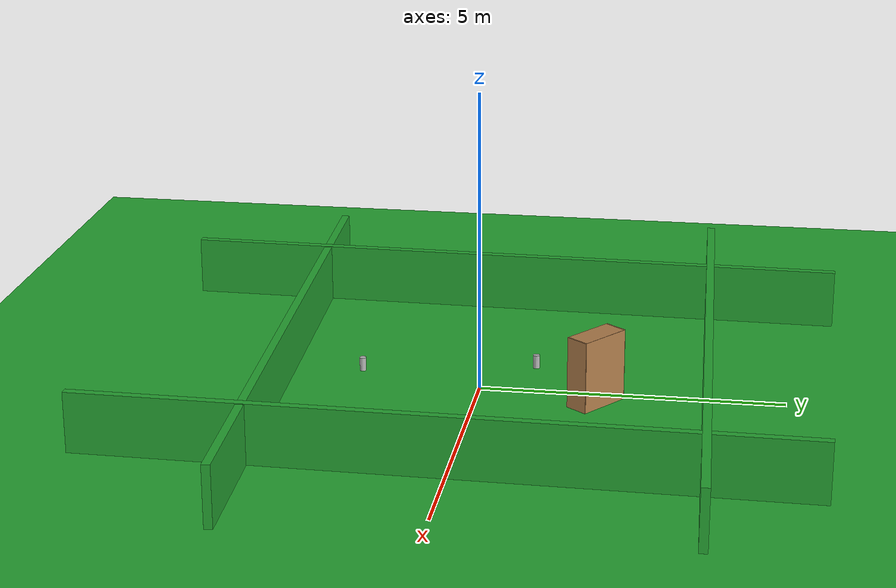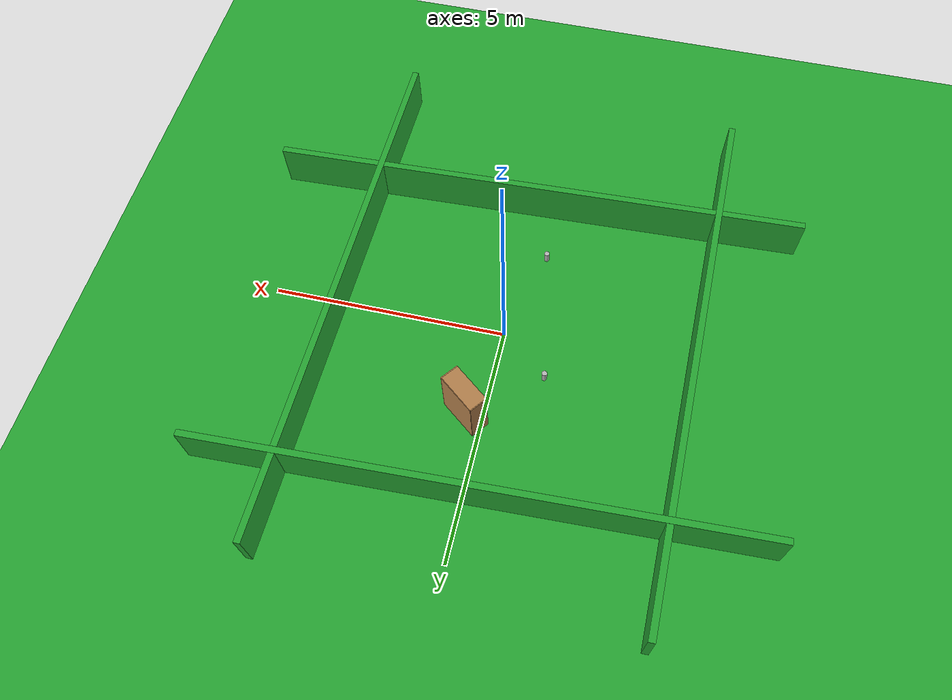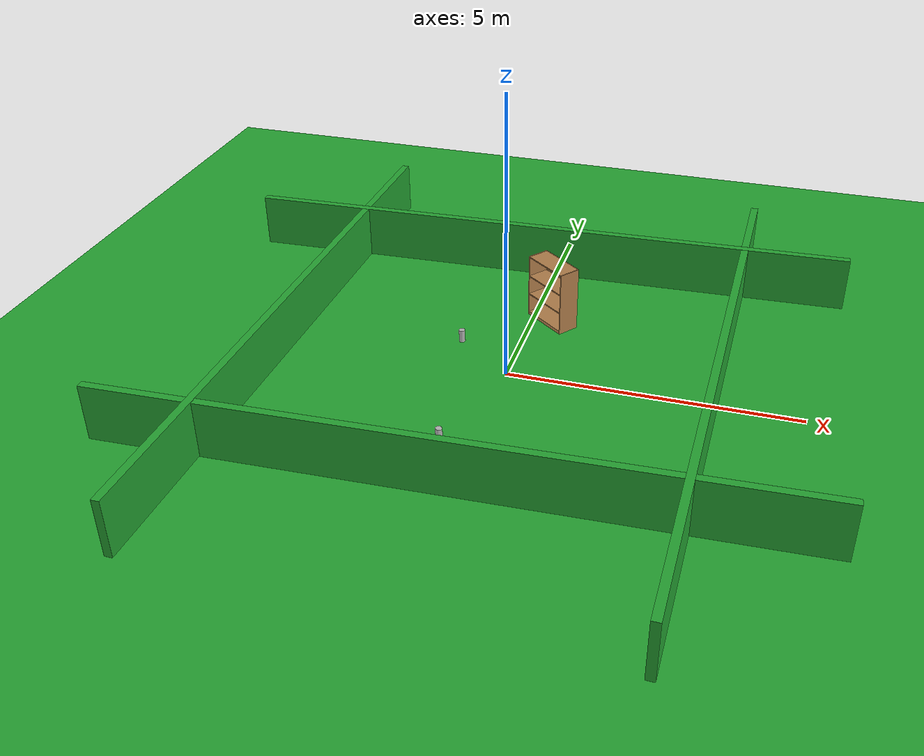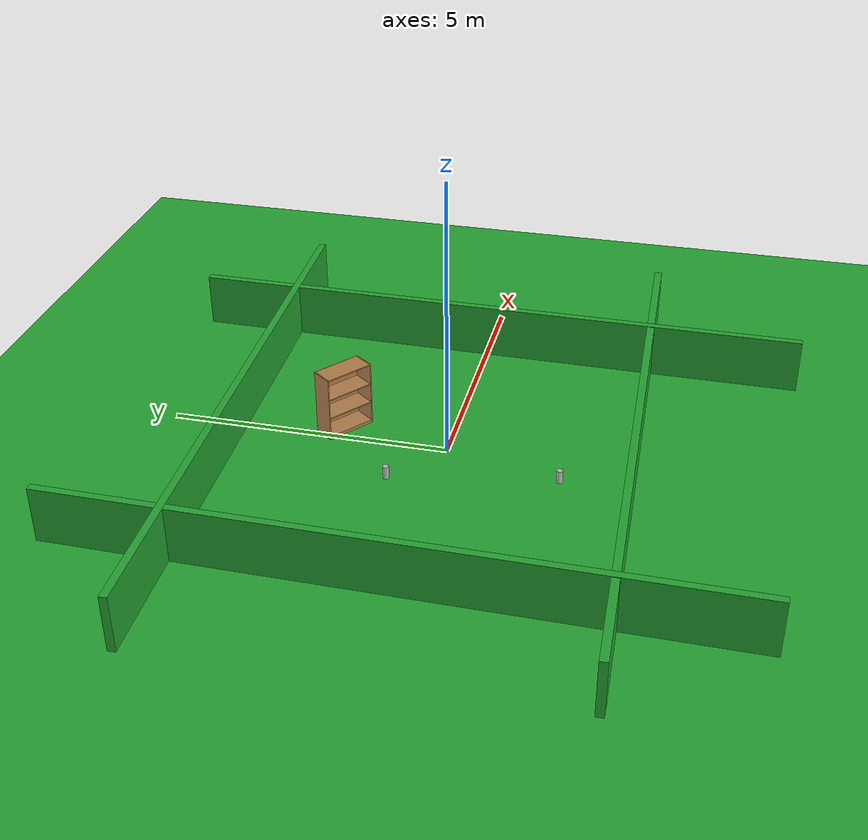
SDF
<sdf version="1.7">
 <world name="default">
  <light name="sun" type="directional">
   <pose>0 0 10 0 -0 0</pose>
   <diffuse>0.8 0.8 0.8 1</diffuse>
   <specular>0.2 0.2 0.2 1</specular>
   <attenuation>
    <range>1000</range>
    <constant>0.9</constant>
    <linear>0.01</linear>
    <quadratic>0.001</quadratic>
   </attenuation>
   <direction>-0.5 0.1 -0.9</direction>
   <spot><inner_angle>0</inner_angle><outer_angle>0</outer_angle><falloff>0</falloff></spot>
  </light>
  <model name="ground_plane">
   <static>1</static>
   <link name="link">
    <collision name="collision">
     <geometry><plane><normal>0 0 1</normal><size>100 100</size></plane></geometry>
     <surface>
      <contact><collide_bitmask>65535</collide_bitmask></contact>
      <friction><ode><mu>100</mu><mu2>50</mu2></ode></friction>
     </surface>
    </collision>
    <visual name="visual">
     <cast_shadows>0</cast_shadows>
     <geometry><plane><normal>0 0 1</normal><size>100 100</size></plane></geometry>
     <material>
      <script><uri>file://media/materials/scripts/gazebo.material</uri><name>Gazebo/Green</name></script>
     </material>
    </visual>
   </link>
  </model>
  <physics type="ode">
   <real_time_update_rate>1000</real_time_update_rate>
   <max_step_size>0.001</max_step_size>
   <real_time_factor>1</real_time_factor>
   <ode>
    <solver>
     <type>quick</type>
     <iters>150</iters>
     <precon_iters>0</precon_iters>
     <sor>1.4</sor>
     <use_dynamic_moi_rescaling>1</use_dynamic_moi_rescaling>
    </solver>
    <constraints>
     <cfm>1e-05</cfm>
     <erp>0.2</erp>
     <contact_max_correcting_vel>2000</contact_max_correcting_vel>
     <contact_surface_layer>0.01</contact_surface_layer>
    </constraints>
   </ode>
  </physics>
  <scene><ambient>0.4 0.4 0.4 1</ambient><background>0.7 0.7 0.7 1</background><shadows>1</shadows></scene>
  <gravity>0 0 -9.8</gravity>
  <magnetic_field>6e-06 2.3e-05 -4.2e-05</magnetic_field>
  <atmosphere type="adiabatic"/>
  <spherical_coordinates>
   <surface_model>EARTH_WGS84</surface_model>
   <latitude_deg>0</latitude_deg>
   <longitude_deg>0</longitude_deg>
   <elevation>0</elevation>
   <heading_deg>0</heading_deg>
  </spherical_coordinates>
  <model name="beer">
   <link name="link">
    <pose>0 0 0.115 0 -0 0</pose>
    <inertial>
     <mass>0.39</mass>
     <inertia><ixx>0.00058</ixx><ixy>0</ixy><ixz>0</ixz><iyy>0.00058</iyy><iyz>0</iyz><izz>0.00019</izz></inertia>
    </inertial>
    <collision name="collision">
     <geometry><cylinder><radius>0.055</radius><length>0.23</length></cylinder></geometry>
    </collision>
    <visual name="visual">
     <geometry><cylinder><radius>0.055</radius><length>0.23</length></cylinder></geometry>
     <material>
      <script>
       <uri>model://beer/materials/scripts</uri>
       <uri>model://beer/materials/textures</uri>
       <name>Beer/Diffuse</name>
      </script>
     </material>
    </visual>
   </link>
   <pose>-0.507346 -2.06155 -9e-06 -0 -0 -0</pose>
  </model>
  <model name="bookshelf">
   <static>1</static>
   <link name="link">
    <inertial><mass>1</mass></inertial>
    <collision name="back">
     <pose>0 0.005 0.6 0 -0 0</pose>
     <geometry><box><size>0.9 0.01 1.2</size></box></geometry>
    </collision>
    <visual name="visual1">
     <pose>0 0.005 0.6 0 -0 0</pose>
     <geometry><box><size>0.9 0.01 1.2</size></box></geometry>
     <material>
      <script><uri>file://media/materials/scripts/gazebo.material</uri><name>Gazebo/Wood</name></script>
     </material>
    </visual>
    <collision name="left_side">
     <pose>0.45 -0.195 0.6 0 -0 0</pose>
     <geometry><box><size>0.02 0.4 1.2</size></box></geometry>
    </collision>
    <visual name="visual2">
     <pose>0.45 -0.195 0.6 0 -0 0</pose>
     <geometry><box><size>0.02 0.4 1.2</size></box></geometry>
     <material>
      <script><uri>file://media/materials/scripts/gazebo.material</uri><name>Gazebo/Wood</name></script>
     </material>
    </visual>
    <collision name="right_side">
     <pose>-0.45 -0.195 0.6 0 -0 0</pose>
     <geometry><box><size>0.02 0.4 1.2</size></box></geometry>
    </collision>
    <visual name="visual3">
     <pose>-0.45 -0.195 0.6 0 -0 0</pose>
     <geometry><box><size>0.02 0.4 1.2</size></box></geometry>
     <material>
      <script><uri>file://media/materials/scripts/gazebo.material</uri><name>Gazebo/Wood</name></script>
     </material>
    </visual>
    <collision name="bottom">
     <pose>0 -0.195 0.03 0 -0 0</pose>
     <geometry><box><size>0.88 0.4 0.06</size></box></geometry>
    </collision>
    <visual name="visual4">
     <pose>0 -0.195 0.03 0 -0 0</pose>
     <geometry><box><size>0.88 0.4 0.06</size></box></geometry>
     <material>
      <script><uri>file://media/materials/scripts/gazebo.material</uri><name>Gazebo/Wood</name></script>
     </material>
    </visual>
    <collision name="top">
     <pose>0 -0.195 1.19 0 -0 0</pose>
     <geometry><box><size>0.88 0.4 0.02</size></box></geometry>
    </collision>
    <visual name="visual5">
     <pose>0 -0.195 1.19 0 -0 0</pose>
     <geometry><box><size>0.88 0.4 0.02</size></box></geometry>
     <material>
      <script><uri>file://media/materials/scripts/gazebo.material</uri><name>Gazebo/Wood</name></script>
     </material>
    </visual>
    <collision name="low_shelf">
     <pose>0 -0.195 0.43 0 -0 0</pose>
     <geometry><box><size>0.88 0.4 0.02</size></box></geometry>
    </collision>
    <visual name="visual6">
     <pose>0 -0.195 0.43 0 -0 0</pose>
     <geometry><box><size>0.88 0.4 0.02</size></box></geometry>
     <material>
      <script><uri>file://media/materials/scripts/gazebo.material</uri><name>Gazebo/Wood</name></script>
     </material>
    </visual>
    <collision name="high_shelf">
     <pose>0 -0.195 0.8 0 -0 0</pose>
     <geometry><box><size>0.88 0.4 0.02</size></box></geometry>
    </collision>
    <visual name="visual7">
     <pose>0 -0.195 0.8 0 -0 0</pose>
     <geometry><box><size>0.88 0.4 0.02</size></box></geometry>
     <material>
      <script><uri>file://media/materials/scripts/gazebo.material</uri><name>Gazebo/Wood</name></script>
     </material>
    </visual>
   </link>
   <pose>0.46345 2.09619 0 0 0 -0.659374</pose>
  </model>
  <model name="beer_0">
   <link name="link">
    <pose>0 0 0.115 0 -0 0</pose>
    <inertial>
     <mass>0.39</mass>
     <inertia><ixx>0.00058</ixx><ixy>0</ixy><ixz>0</ixz><iyy>0.00058</iyy><iyz>0</iyz><izz>0.00019</izz></inertia>
    </inertial>
    <collision name="collision">
     <geometry><cylinder><radius>0.055</radius><length>0.23</length></cylinder></geometry>
    </collision>
    <visual name="visual">
     <geometry><cylinder><radius>0.055</radius><length>0.23</length></cylinder></geometry>
     <material>
      <script>
       <uri>model://beer/materials/scripts</uri>
       <uri>model://beer/materials/textures</uri>
       <name>Beer/Diffuse</name>
      </script>
     </material>
    </visual>
   </link>
   <pose>-1.03681 0.816013 8.3e-05 0.001526 6e-05 0.006875</pose>
  </model>
  <model name="unit_box">
   <static>1</static>
   <pose>3.52221 -0.103223 0.497634 -0.001751 -2.2e-05 -0.01245</pose>
   <link name="link">
    <inertial>
     <mass>1</mass>
     <inertia>
      <ixx>0.166667</ixx>
      <ixy>0</ixy>
      <ixz>0</ixz>
      <iyy>0.166667</iyy>
      <iyz>0</iyz>
      <izz>0.166667</izz>
     </inertia>
    </inertial>
    <collision name="collision"><geometry><box><size>0.135816 11.5673 1</size></box></geometry></collision>
    <visual name="visual">
     <geometry><box><size>0.135816 11.5673 1</size></box></geometry>
     <material>
      <script><name>Gazebo/Green</name><uri>file://media/materials/scripts/gazebo.material</uri></script>
     </material>
    </visual>
   </link>
  </model>
  <model name="unit_box_clone">
   <static>1</static>
   <pose>-3.94326 -0.011604 0.497634 -0.001751 -2.2e-05 -0.01245</pose>
   <link name="link">
    <inertial>
     <mass>1</mass>
     <inertia>
      <ixx>0.166667</ixx>
      <ixy>0</ixy>
      <ixz>0</ixz>
      <iyy>0.166667</iyy>
      <iyz>0</iyz>
      <izz>0.166667</izz>
     </inertia>
    </inertial>
    <collision name="collision"><geometry><box><size>0.135816 11.5673 1</size></box></geometry></collision>
    <visual name="visual">
     <geometry><box><size>0.135816 11.5673 1</size></box></geometry>
     <material>
      <script><name>Gazebo/Green</name><uri>file://media/materials/scripts/gazebo.material</uri></script>
     </material>
    </visual>
   </link>
  </model>
  <model name="unit_box_clone_0">
   <static>1</static>
   <pose>-0.301362 3.71184 0.492229 -6.3e-05 -0.00175 -1.5345</pose>
   <link name="link">
    <inertial>
     <mass>1</mass>
     <inertia>
      <ixx>0.166667</ixx>
      <ixy>0</ixy>
      <ixz>0</ixz>
      <iyy>0.166667</iyy>
      <iyz>0</iyz>
      <izz>0.166667</izz>
     </inertia>
    </inertial>
    <collision name="collision"><geometry><box><size>0.135816 11.5673 1</size></box></geometry></collision>
    <visual name="visual">
     <geometry><box><size>0.135816 11.5673 1</size></box></geometry>
     <material>
      <script><name>Gazebo/Green</name><uri>file://media/materials/scripts/gazebo.material</uri></script>
     </material>
    </visual>
   </link>
  </model>
  <model name="unit_box_clone_0_clone">
   <static>1</static>
   <pose>-0.037799 -3.24354 0.492229 -6.3e-05 -0.00175 -1.5345</pose>
   <link name="link">
    <inertial>
     <mass>1</mass>
     <inertia>
      <ixx>0.166667</ixx>
      <ixy>0</ixy>
      <ixz>0</ixz>
      <iyy>0.166667</iyy>
      <iyz>0</iyz>
      <izz>0.166667</izz>
     </inertia>
    </inertial>
    <collision name="collision"><geometry><box><size>0.135816 11.5673 1</size></box></geometry></collision>
    <visual name="visual">
     <geometry><box><size>0.135816 11.5673 1</size></box></geometry>
     <material>
      <script><name>Gazebo/Green</name><uri>file://media/materials/scripts/gazebo.material</uri></script>
     </material>
    </visual>
   </link>
  </model>
 </world>
</sdf>
